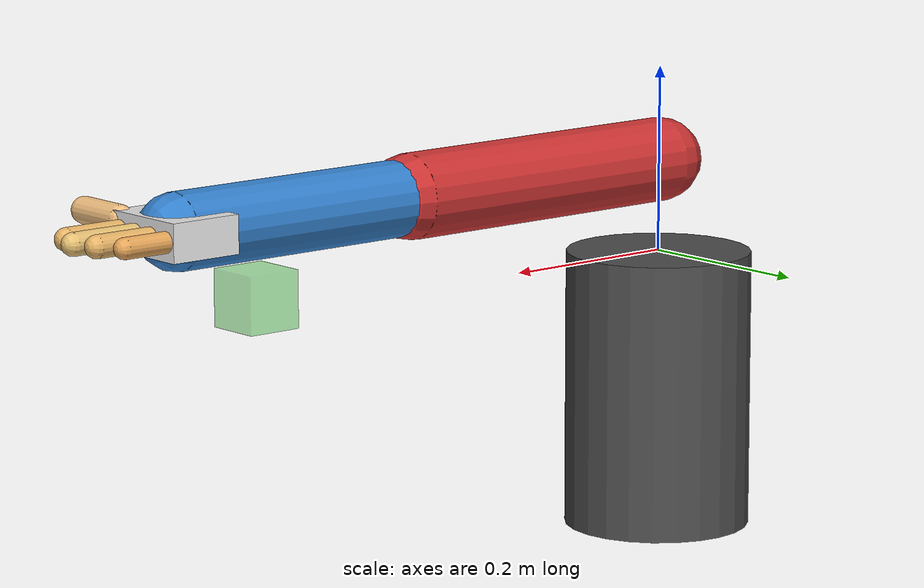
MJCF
<mujoco>
  <compiler angle="radian"/>
  <option timestep="0.01" gravity="0 0 0"/>

  <default>
    <joint damping="0.5" limited="true"/>
    <geom density="200"/>
  </default>

  <worldbody>
    <!-- 肩座 -->
    <body name="pedestal" pos="0 0 -0.15">
      <geom type="cylinder" size="0.1 0.15" rgba="0.3 0.3 0.3 1"/>
    </body>

    <!-- 大臂：肩关节绕 z 轴旋转（水平摆动） -->
    <body name="upper_arm" pos="0 0 0.1">
      <joint name="shoulder" type="hinge" axis="0 0 1" range="-2.5 2.5"/>
      <geom type="capsule" fromto="0 0 0 0.35 0 0" size="0.045" rgba="0.8 0.2 0.2 1"/>

      <!-- 小臂：肘关节绕 y 轴弯曲（上下抬） -->
      <body name="forearm" pos="0.35 0 0">
        <joint name="elbow" type="hinge" axis="0 1 0" range="-2.0 1.2"/>
        <geom type="capsule" fromto="0 0 0 0.3 0 0" size="0.04" rgba="0.2 0.5 0.8 1"/>

        <!-- 手掌 -->
        <body name="palm" pos="0.3 0 0">
          <geom type="box" size="0.04 0.05 0.02" rgba="0.9 0.9 0.9 1"/>

          <!-- 食指 -->
          <body name="finger_index" pos="0.04 -0.0375 0">
            <joint name="finger_index" type="hinge" axis="0 1 0" range="-1.8 0.3" damping="0.2"/>
            <geom type="capsule" fromto="0 0 0 0.065 0 0" size="0.012" rgba="0.9 0.7 0.4 1"/>
          </body>
          <!-- 中指 -->
          <body name="finger_middle" pos="0.04 -0.0125 0">
            <joint name="finger_middle" type="hinge" axis="0 1 0" range="-1.8 0.3" damping="0.2"/>
            <geom type="capsule" fromto="0 0 0 0.075 0 0" size="0.012" rgba="0.9 0.75 0.45 1"/>
          </body>
          <!-- 无名指 -->
          <body name="finger_ring" pos="0.04 0.0125 0">
            <joint name="finger_ring" type="hinge" axis="0 1 0" range="-1.8 0.3" damping="0.2"/>
            <geom type="capsule" fromto="0 0 0 0.065 0 0" size="0.012" rgba="0.9 0.7 0.4 1"/>
          </body>
          <!-- 小指 -->
          <body name="finger_pinky" pos="0.04 0.0375 0">
            <joint name="finger_pinky" type="hinge" axis="0 1 0" range="-1.8 0.3" damping="0.2"/>
            <geom type="capsule" fromto="0 0 0 0.05 0 0" size="0.011" rgba="0.9 0.65 0.35 1"/>
          </body>
          <!-- 拇指：绕 z 轴对掌，正向摆过掌心与四指对捏 -->
          <body name="thumb" pos="0.03 -0.05 0.01">
            <joint name="thumb" type="hinge" axis="0 0 1" range="-0.3 1.8" damping="0.2"/>
            <geom type="capsule" fromto="0 0 0 0 -0.06 0" size="0.014" rgba="0.95 0.75 0.5 1"/>
          </body>
        </body>
      </body>
    </body>

    <!-- 抓取目标：一个小方块（静止，不参与训练） -->
    <body name="target_box" pos="0.55 0.0 0.02">
      <geom type="box" size="0.03 0.03 0.03" rgba="0.3 0.8 0.3 0.5" contype="0" conaffinity="0"/>
    </body>
  </worldbody>

  <actuator>
    <motor joint="shoulder"      ctrlrange="-1 1" gear="3.0"/>
    <motor joint="elbow"         ctrlrange="-1 1" gear="1.5"/>
    <motor joint="finger_index"  ctrlrange="-1 1" gear="0.5"/>
    <motor joint="finger_middle" ctrlrange="-1 1" gear="0.5"/>
    <motor joint="finger_ring"   ctrlrange="-1 1" gear="0.5"/>
    <motor joint="finger_pinky"  ctrlrange="-1 1" gear="0.5"/>
    <motor joint="thumb"         ctrlrange="-1 1" gear="0.6"/>
  </actuator>
</mujoco>
